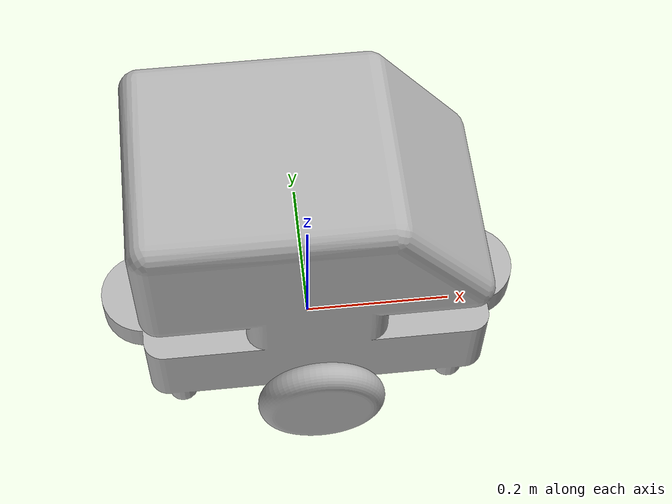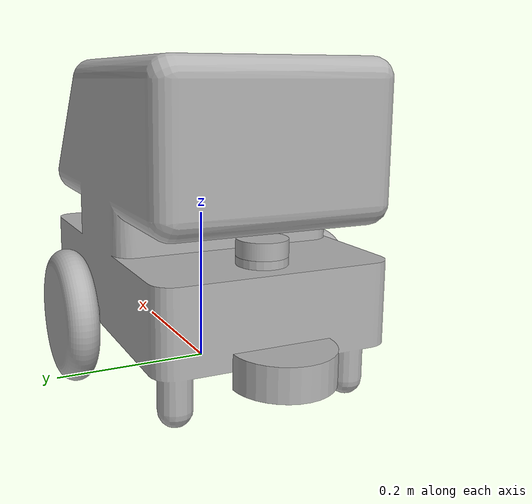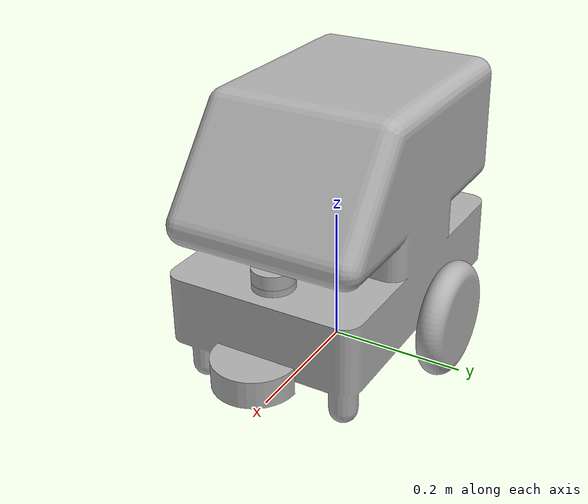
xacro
<?xml version="1.0" ?>
<robot name="amr_bot" xmlns:xacro="http://www.ros.org/wiki/xacro">

<xacro:include filename="$(find amr_bot_description)/urdf/materials.xacro" />
<xacro:include filename="$(find amr_bot_description)/urdf/amr_bot.trans" />
<xacro:include filename="$(find amr_bot_description)/urdf/amr_bot.gazebo" />
<link name="base_link">
  <inertial>
    <origin xyz="-0.010110375069145652 1.2359755708078786e-09 0.20571516113404947" rpy="0 0 0"/>
    <mass value="17.649453013193376"/>
    <inertia ixx="0.404186" iyy="0.623533" izz="0.5718" ixy="-0.0" iyz="-0.0" ixz="0.030142"/>
  </inertial>
  <visual>
    <origin xyz="0 0 0" rpy="0 0 0"/>
    <geometry>
      <mesh filename="package://amr_bot_description/meshes/base_link.stl" scale="0.001 0.001 0.001"/>
    </geometry>
    <material name="silver"/>
  </visual>
  <collision>
    <origin xyz="0 0 0" rpy="0 0 0"/>
    <geometry>
      <mesh filename="package://amr_bot_description/meshes/base_link.stl" scale="0.001 0.001 0.001"/>
    </geometry>
  </collision>
</link>

<link name="l_wheel_1">
  <inertial>
    <origin xyz="2.3588796796908353e-17 0.01999999999999999 1.3877787807814457e-17" rpy="0 0 0"/>
    <mass value="0.717145583923705"/>
    <inertia ixx="0.0012" iyy="0.002227" izz="0.0012" ixy="0.0" iyz="-0.0" ixz="0.0"/>
  </inertial>
  <visual>
    <origin xyz="-0.0 -0.16 -0.0825" rpy="0 0 0"/>
    <geometry>
      <mesh filename="package://amr_bot_description/meshes/l_wheel_1.stl" scale="0.001 0.001 0.001"/>
    </geometry>
    <material name="silver"/>
  </visual>
  <collision>
    <origin xyz="-0.0 -0.16 -0.0825" rpy="0 0 0"/>
    <geometry>
      <mesh filename="package://amr_bot_description/meshes/l_wheel_1.stl" scale="0.001 0.001 0.001"/>
    </geometry>
  </collision>
</link>

<link name="r_wheel_1">
  <inertial>
    <origin xyz="2.3588796796908353e-17 -0.01999999999999999 1.3877787807814457e-17" rpy="0 0 0"/>
    <mass value="0.717145583923705"/>
    <inertia ixx="0.0012" iyy="0.002227" izz="0.0012" ixy="-0.0" iyz="0.0" ixz="0.0"/>
  </inertial>
  <visual>
    <origin xyz="-0.0 0.16 -0.0825" rpy="0 0 0"/>
    <geometry>
      <mesh filename="package://amr_bot_description/meshes/r_wheel_1.stl" scale="0.001 0.001 0.001"/>
    </geometry>
    <material name="silver"/>
  </visual>
  <collision>
    <origin xyz="-0.0 0.16 -0.0825" rpy="0 0 0"/>
    <geometry>
      <mesh filename="package://amr_bot_description/meshes/r_wheel_1.stl" scale="0.001 0.001 0.001"/>
    </geometry>
  </collision>
</link>

<link name="f_lidar_1">
  <inertial>
    <origin xyz="-5.551115123125783e-17 -5.026061718855926e-18 0.010000000000000009" rpy="0 0 0"/>
    <mass value="0.07803716151517048"/>
    <inertia ixx="2e-05" iyy="2e-05" izz="3.5e-05" ixy="-0.0" iyz="-0.0" ixz="0.0"/>
  </inertial>
  <visual>
    <origin xyz="-0.17 -0.0 -0.18" rpy="0 0 0"/>
    <geometry>
      <mesh filename="package://amr_bot_description/meshes/f_lidar_1.stl" scale="0.001 0.001 0.001"/>
    </geometry>
    <material name="silver"/>
  </visual>
  <collision>
    <origin xyz="-0.17 -0.0 -0.18" rpy="0 0 0"/>
    <geometry>
      <mesh filename="package://amr_bot_description/meshes/f_lidar_1.stl" scale="0.001 0.001 0.001"/>
    </geometry>
  </collision>
</link>

<link name="b_lidar_1">
  <inertial>
    <origin xyz="5.551115123125783e-17 0.0 0.010000000000000009" rpy="0 0 0"/>
    <mass value="0.07803716151517046"/>
    <inertia ixx="2e-05" iyy="2e-05" izz="3.5e-05" ixy="-0.0" iyz="0.0" ixz="0.0"/>
  </inertial>
  <visual>
    <origin xyz="0.17 -0.0 -0.18" rpy="0 0 0"/>
    <geometry>
      <mesh filename="package://amr_bot_description/meshes/b_lidar_1.stl" scale="0.001 0.001 0.001"/>
    </geometry>
    <material name="silver"/>
  </visual>
  <collision>
    <origin xyz="0.17 -0.0 -0.18" rpy="0 0 0"/>
    <geometry>
      <mesh filename="package://amr_bot_description/meshes/b_lidar_1.stl" scale="0.001 0.001 0.001"/>
    </geometry>
  </collision>
</link>

<joint name="l_wheel_joint" type="continuous">
  <origin xyz="0.0 0.16 0.0825" rpy="0 0 0"/>
  <parent link="base_link"/>
  <child link="l_wheel_1"/>
  <axis xyz="0.0 1.0 0.0"/>
</joint>

<joint name="r_wheel_joint" type="continuous">
  <origin xyz="0.0 -0.16 0.0825" rpy="0 0 0"/>
  <parent link="base_link"/>
  <child link="r_wheel_1"/>
  <axis xyz="0.0 1.0 0.0"/>
</joint>

<joint name="f_lidar_joint" type="fixed">
  <origin xyz="0.17 0.0 0.18" rpy="0 0 0"/>
  <parent link="base_link"/>
  <child link="f_lidar_1"/>
</joint>

<joint name="b_lidar_joint" type="fixed">
  <origin xyz="-0.17 0.0 0.18" rpy="0 0 0"/>
  <parent link="base_link"/>
  <child link="b_lidar_1"/>
</joint>

</robot>

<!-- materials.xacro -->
<robot name="amr_bot" xmlns:xacro="http://www.ros.org/wiki/xacro" >

<material name="silver">
  <color rgba="0.700 0.700 0.700 1.000"/>
</material>

</robot>

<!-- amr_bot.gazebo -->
<robot name="amr_bot" xmlns:xacro="http://www.ros.org/wiki/xacro" >

<xacro:property name="body_color" value="Gazebo/Silver" />

<gazebo>
  <plugin name="control" filename="libgazebo_ros_control.so"/>
</gazebo>

<gazebo reference="base_link">
  <material>${body_color}</material>
  <mu1>0.2</mu1>
  <mu2>0.2</mu2>
  <selfCollide>true</selfCollide>
  <gravity>true</gravity>
</gazebo>

<gazebo reference="l_wheel_1">
  <material>${body_color}</material>
  <mu1>0.2</mu1>
  <mu2>0.2</mu2>
  <selfCollide>true</selfCollide>
</gazebo>

<gazebo reference="r_wheel_1">
  <material>${body_color}</material>
  <mu1>0.2</mu1>
  <mu2>0.2</mu2>
  <selfCollide>true</selfCollide>
</gazebo>

<gazebo reference="f_lidar_1">
  <material>${body_color}</material>
  <mu1>0.2</mu1>
  <mu2>0.2</mu2>
  <selfCollide>true</selfCollide>
</gazebo>

<gazebo reference="b_lidar_1">
  <material>${body_color}</material>
  <mu1>0.2</mu1>
  <mu2>0.2</mu2>
  <selfCollide>true</selfCollide>
</gazebo>

<gazebo>
  <plugin name="differential_drive_controller" filename="libgazebo_ros_diff_drive.so">

    <!-- Plugin update rate in Hz -->
    <updateRate>10</updateRate>

    <!-- Name of left joint, defaults to `left_joint` -->
    <leftJoint>l_wheel_joint</leftJoint>

    <!-- Name of right joint, defaults to `right_joint` -->
    <rightJoint>r_wheel_joint</rightJoint>

    <!-- Wheel acceleration, in rad/s^2, defaults to 0.0 rad/s^2 -->
    <wheelAcceleration>1.0</wheelAcceleration>

    <!-- Maximum torque which the wheels can produce, in Nm, defaults to 5 Nm -->
    <wheelTorque>20</wheelTorque>

    <!-- Topic to receive geometry_msgs/Twist message commands, defaults to `cmd_vel` -->
    <commandTopic>cmd_vel</commandTopic>

    <!-- Topic to publish nav_msgs/Odometry messages, defaults to `odom` -->
    <odometryTopic>odom</odometryTopic>

    <!-- Odometry frame, defaults to `odom` -->
    <odometryFrame>odom</odometryFrame>

    <!-- Robot frame to calculate odometry from, defaults to `base_footprint` -->
    <robotBaseFrame>base_link</robotBaseFrame>

    <!-- Odometry source, 0 for ENCODER, 1 for WORLD, defaults to WORLD -->
    <odometrySource>1</odometrySource>

    <!-- Set to true to publish transforms for the wheel links, defaults to false -->
    <publishWheelTF>true</publishWheelTF>

    <!-- Set to true to publish transforms for the odometry, defaults to true -->
    <publishOdom>true</publishOdom>

    <!-- Set to true to publish sensor_msgs/JointState on /joint_states for the wheel joints, defaults to false -->
    <publishWheelJointState>true</publishWheelJointState>

    <!-- Set to true to swap right and left wheels, defaults to true -->
    <legacyMode>false</legacyMode>
  </plugin>
</gazebo>

 <!-- hokuyo -->
  <gazebo reference="f_lidar_1">
    <sensor type="ray" name="head_hokuyo_sensor">
      <pose>0 0 0 0 0 0</pose>
      <visualize>true</visualize>
      <update_rate>40</update_rate>
      <ray>
        <scan>
          <horizontal>
            <samples>720</samples>
            <resolution>1</resolution>
            <min_angle>-2.35619</min_angle>
            <max_angle>2.35619</max_angle>
          </horizontal>
        </scan>
        <range>
          <min>0.10</min>
          <max>30.0</max>
          <resolution>0.01</resolution>
        </range>
        <noise>
          <type>gaussian</type>
          <mean>0.0</mean>
          <stddev>0.01</stddev>
        </noise>
      </ray>
      <plugin name="gazebo_ros_head_hokuyo_controller" filename="libgazebo_ros_laser.so">
        <topicName>/front_scan</topicName>
        <frameName>f_lidar_1</frameName>
        <topicName>/rear_scan</topicName>
        <frameName>b_lidar_1</frameName>
      </plugin>
    </sensor>
  </gazebo>

</robot>
